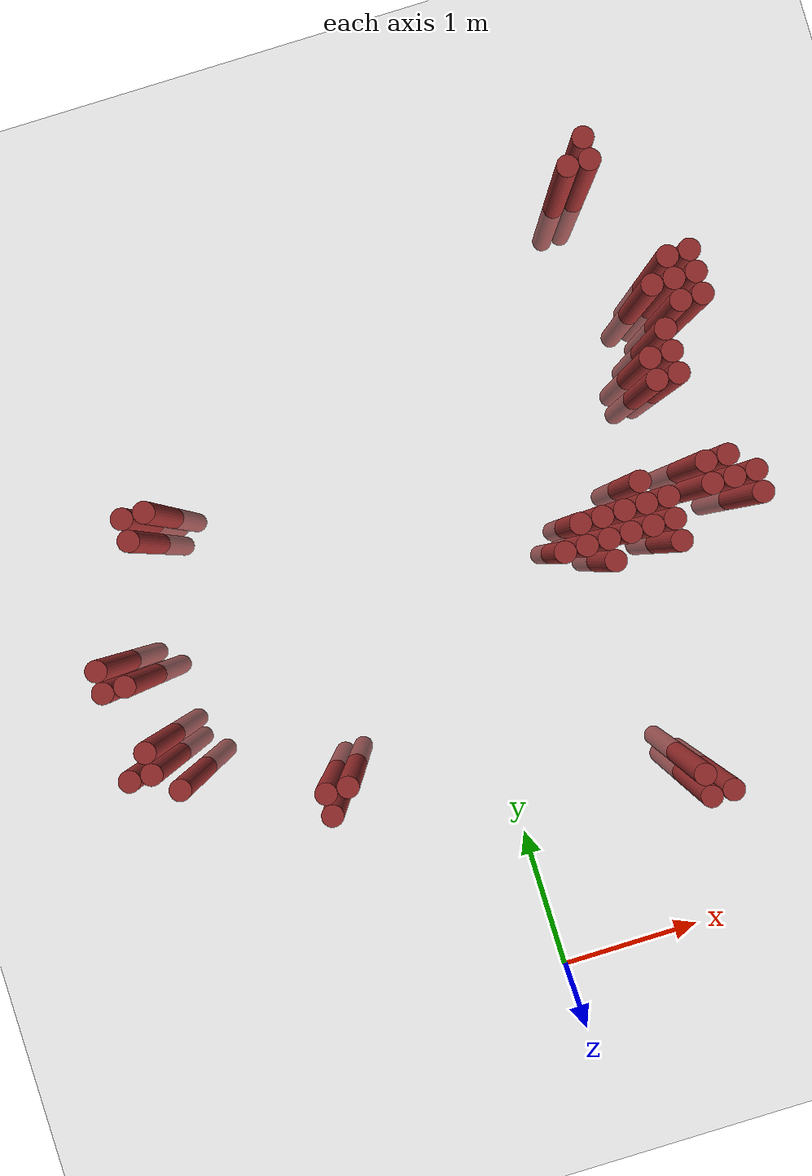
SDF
<sdf version="1.6">
 <world name="default">
  <model name="ground_plane">
   <static>1</static>
   <link name="link">
    <collision name="collision">
     <geometry><plane><normal>0 0 1</normal><size>100 100</size></plane></geometry>
     <surface><friction><ode><mu>100</mu><mu2>50</mu2></ode></friction></surface>
    </collision>
    <visual name="visual">
     <cast_shadows>0</cast_shadows>
     <geometry><plane><normal>0 0 1</normal><size>100 100</size></plane></geometry>
     <material>
      <script><uri>file://media/materials/scripts/gazebo.material</uri><name>Gazebo/Grey</name></script>
     </material>
    </visual>
   </link>
  </model>
  <model name="unit_cylinder_312">
   <static>1</static>
   <pose>-2.375000 2.275000 0.000000 0.000000 0.000000 0.000000</pose>
   <link name="link">
    <inertial>
     <mass>1</mass>
     <inertia><ixx>0.145833</ixx><ixy>0</ixy><ixz>0</ixz><iyy>0.145833</iyy><iyz>0</iyz><izz>0.125</izz></inertia>
    </inertial>
    <collision name="collision">
     <geometry><cylinder><radius>0.075000</radius><length>1.5</length></cylinder></geometry>
    </collision>
    <visual name="visual">
     <geometry><cylinder><radius>0.075000</radius><length>1.5</length></cylinder></geometry>
     <material>
      <ambient>0.648000 0.192000 0.192000 1</ambient>
      <diffuse>0.648000 0.192000 0.192000 1</diffuse>
     </material>
     <material>
      <script><name>Gazebo/Grey</name><uri>file://media/materials/scripts/gazebo.material</uri></script>
     </material>
    </visual>
   </link>
  </model>
  <model name="unit_cylinder_313">
   <static>1</static>
   <pose>-2.375000 2.875000 0.000000 0.000000 0.000000 0.000000</pose>
   <link name="link">
    <inertial>
     <mass>1</mass>
     <inertia><ixx>0.145833</ixx><ixy>0</ixy><ixz>0</ixz><iyy>0.145833</iyy><iyz>0</iyz><izz>0.125</izz></inertia>
    </inertial>
    <collision name="collision">
     <geometry><cylinder><radius>0.075000</radius><length>1.5</length></cylinder></geometry>
    </collision>
    <visual name="visual">
     <geometry><cylinder><radius>0.075000</radius><length>1.5</length></cylinder></geometry>
     <material>
      <ambient>0.648000 0.192000 0.192000 1</ambient>
      <diffuse>0.648000 0.192000 0.192000 1</diffuse>
     </material>
     <material>
      <script><name>Gazebo/Grey</name><uri>file://media/materials/scripts/gazebo.material</uri></script>
     </material>
    </visual>
   </link>
  </model>
  <model name="unit_cylinder_314">
   <static>1</static>
   <pose>-2.375000 3.025000 0.000000 0.000000 0.000000 0.000000</pose>
   <link name="link">
    <inertial>
     <mass>1</mass>
     <inertia><ixx>0.145833</ixx><ixy>0</ixy><ixz>0</ixz><iyy>0.145833</iyy><iyz>0</iyz><izz>0.125</izz></inertia>
    </inertial>
    <collision name="collision">
     <geometry><cylinder><radius>0.075000</radius><length>1.5</length></cylinder></geometry>
    </collision>
    <visual name="visual">
     <geometry><cylinder><radius>0.075000</radius><length>1.5</length></cylinder></geometry>
     <material>
      <ambient>0.648000 0.192000 0.192000 1</ambient>
      <diffuse>0.648000 0.192000 0.192000 1</diffuse>
     </material>
     <material>
      <script><name>Gazebo/Grey</name><uri>file://media/materials/scripts/gazebo.material</uri></script>
     </material>
    </visual>
   </link>
  </model>
  <model name="unit_cylinder_318">
   <static>1</static>
   <pose>-2.225000 2.275000 0.000000 0.000000 0.000000 0.000000</pose>
   <link name="link">
    <inertial>
     <mass>1</mass>
     <inertia><ixx>0.145833</ixx><ixy>0</ixy><ixz>0</ixz><iyy>0.145833</iyy><iyz>0</iyz><izz>0.125</izz></inertia>
    </inertial>
    <collision name="collision">
     <geometry><cylinder><radius>0.075000</radius><length>1.5</length></cylinder></geometry>
    </collision>
    <visual name="visual">
     <geometry><cylinder><radius>0.075000</radius><length>1.5</length></cylinder></geometry>
     <material>
      <ambient>0.648000 0.192000 0.192000 1</ambient>
      <diffuse>0.648000 0.192000 0.192000 1</diffuse>
     </material>
     <material>
      <script><name>Gazebo/Grey</name><uri>file://media/materials/scripts/gazebo.material</uri></script>
     </material>
    </visual>
   </link>
  </model>
  <model name="unit_cylinder_319">
   <static>1</static>
   <pose>-2.225000 2.425000 0.000000 0.000000 0.000000 0.000000</pose>
   <link name="link">
    <inertial>
     <mass>1</mass>
     <inertia><ixx>0.145833</ixx><ixy>0</ixy><ixz>0</ixz><iyy>0.145833</iyy><iyz>0</iyz><izz>0.125</izz></inertia>
    </inertial>
    <collision name="collision">
     <geometry><cylinder><radius>0.075000</radius><length>1.5</length></cylinder></geometry>
    </collision>
    <visual name="visual">
     <geometry><cylinder><radius>0.075000</radius><length>1.5</length></cylinder></geometry>
     <material>
      <ambient>0.648000 0.192000 0.192000 1</ambient>
      <diffuse>0.648000 0.192000 0.192000 1</diffuse>
     </material>
     <material>
      <script><name>Gazebo/Grey</name><uri>file://media/materials/scripts/gazebo.material</uri></script>
     </material>
    </visual>
   </link>
  </model>
  <model name="unit_cylinder_320">
   <static>1</static>
   <pose>-2.225000 2.875000 0.000000 0.000000 0.000000 0.000000</pose>
   <link name="link">
    <inertial>
     <mass>1</mass>
     <inertia><ixx>0.145833</ixx><ixy>0</ixy><ixz>0</ixz><iyy>0.145833</iyy><iyz>0</iyz><izz>0.125</izz></inertia>
    </inertial>
    <collision name="collision">
     <geometry><cylinder><radius>0.075000</radius><length>1.5</length></cylinder></geometry>
    </collision>
    <visual name="visual">
     <geometry><cylinder><radius>0.075000</radius><length>1.5</length></cylinder></geometry>
     <material>
      <ambient>0.648000 0.192000 0.192000 1</ambient>
      <diffuse>0.648000 0.192000 0.192000 1</diffuse>
     </material>
     <material>
      <script><name>Gazebo/Grey</name><uri>file://media/materials/scripts/gazebo.material</uri></script>
     </material>
    </visual>
   </link>
  </model>
  <model name="unit_cylinder_323">
   <static>1</static>
   <pose>-2.075000 2.125000 0.000000 0.000000 0.000000 0.000000</pose>
   <link name="link">
    <inertial>
     <mass>1</mass>
     <inertia><ixx>0.145833</ixx><ixy>0</ixy><ixz>0</ixz><iyy>0.145833</iyy><iyz>0</iyz><izz>0.125</izz></inertia>
    </inertial>
    <collision name="collision">
     <geometry><cylinder><radius>0.075000</radius><length>1.5</length></cylinder></geometry>
    </collision>
    <visual name="visual">
     <geometry><cylinder><radius>0.075000</radius><length>1.5</length></cylinder></geometry>
     <material>
      <ambient>0.648000 0.192000 0.192000 1</ambient>
      <diffuse>0.648000 0.192000 0.192000 1</diffuse>
     </material>
     <material>
      <script><name>Gazebo/Grey</name><uri>file://media/materials/scripts/gazebo.material</uri></script>
     </material>
    </visual>
   </link>
  </model>
  <model name="unit_cylinder_326">
   <static>1</static>
   <pose>-1.925000 3.775000 0.000000 0.000000 0.000000 0.000000</pose>
   <link name="link">
    <inertial>
     <mass>1</mass>
     <inertia><ixx>0.145833</ixx><ixy>0</ixy><ixz>0</ixz><iyy>0.145833</iyy><iyz>0</iyz><izz>0.125</izz></inertia>
    </inertial>
    <collision name="collision">
     <geometry><cylinder><radius>0.075000</radius><length>1.5</length></cylinder></geometry>
    </collision>
    <visual name="visual">
     <geometry><cylinder><radius>0.075000</radius><length>1.5</length></cylinder></geometry>
     <material>
      <ambient>0.648000 0.192000 0.192000 1</ambient>
      <diffuse>0.648000 0.192000 0.192000 1</diffuse>
     </material>
     <material>
      <script><name>Gazebo/Grey</name><uri>file://media/materials/scripts/gazebo.material</uri></script>
     </material>
    </visual>
   </link>
  </model>
  <model name="unit_cylinder_327">
   <static>1</static>
   <pose>-1.925000 3.925000 0.000000 0.000000 0.000000 0.000000</pose>
   <link name="link">
    <inertial>
     <mass>1</mass>
     <inertia><ixx>0.145833</ixx><ixy>0</ixy><ixz>0</ixz><iyy>0.145833</iyy><iyz>0</iyz><izz>0.125</izz></inertia>
    </inertial>
    <collision name="collision">
     <geometry><cylinder><radius>0.075000</radius><length>1.5</length></cylinder></geometry>
    </collision>
    <visual name="visual">
     <geometry><cylinder><radius>0.075000</radius><length>1.5</length></cylinder></geometry>
     <material>
      <ambient>0.648000 0.192000 0.192000 1</ambient>
      <diffuse>0.648000 0.192000 0.192000 1</diffuse>
     </material>
     <material>
      <script><name>Gazebo/Grey</name><uri>file://media/materials/scripts/gazebo.material</uri></script>
     </material>
    </visual>
   </link>
  </model>
  <model name="unit_cylinder_332">
   <static>1</static>
   <pose>-1.775000 3.925000 0.000000 0.000000 0.000000 0.000000</pose>
   <link name="link">
    <inertial>
     <mass>1</mass>
     <inertia><ixx>0.145833</ixx><ixy>0</ixy><ixz>0</ixz><iyy>0.145833</iyy><iyz>0</iyz><izz>0.125</izz></inertia>
    </inertial>
    <collision name="collision">
     <geometry><cylinder><radius>0.075000</radius><length>1.5</length></cylinder></geometry>
    </collision>
    <visual name="visual">
     <geometry><cylinder><radius>0.075000</radius><length>1.5</length></cylinder></geometry>
     <material>
      <ambient>0.648000 0.192000 0.192000 1</ambient>
      <diffuse>0.648000 0.192000 0.192000 1</diffuse>
     </material>
     <material>
      <script><name>Gazebo/Grey</name><uri>file://media/materials/scripts/gazebo.material</uri></script>
     </material>
    </visual>
   </link>
  </model>
  <model name="unit_cylinder_338">
   <static>1</static>
   <pose>-1.175000 1.675000 0.000000 0.000000 0.000000 0.000000</pose>
   <link name="link">
    <inertial>
     <mass>1</mass>
     <inertia><ixx>0.145833</ixx><ixy>0</ixy><ixz>0</ixz><iyy>0.145833</iyy><iyz>0</iyz><izz>0.125</izz></inertia>
    </inertial>
    <collision name="collision">
     <geometry><cylinder><radius>0.075000</radius><length>1.5</length></cylinder></geometry>
    </collision>
    <visual name="visual">
     <geometry><cylinder><radius>0.075000</radius><length>1.5</length></cylinder></geometry>
     <material>
      <ambient>0.648000 0.192000 0.192000 1</ambient>
      <diffuse>0.648000 0.192000 0.192000 1</diffuse>
     </material>
     <material>
      <script><name>Gazebo/Grey</name><uri>file://media/materials/scripts/gazebo.material</uri></script>
     </material>
    </visual>
   </link>
  </model>
  <model name="unit_cylinder_339">
   <static>1</static>
   <pose>-1.175000 1.825000 0.000000 0.000000 0.000000 0.000000</pose>
   <link name="link">
    <inertial>
     <mass>1</mass>
     <inertia><ixx>0.145833</ixx><ixy>0</ixy><ixz>0</ixz><iyy>0.145833</iyy><iyz>0</iyz><izz>0.125</izz></inertia>
    </inertial>
    <collision name="collision">
     <geometry><cylinder><radius>0.075000</radius><length>1.5</length></cylinder></geometry>
    </collision>
    <visual name="visual">
     <geometry><cylinder><radius>0.075000</radius><length>1.5</length></cylinder></geometry>
     <material>
      <ambient>0.648000 0.192000 0.192000 1</ambient>
      <diffuse>0.648000 0.192000 0.192000 1</diffuse>
     </material>
     <material>
      <script><name>Gazebo/Grey</name><uri>file://media/materials/scripts/gazebo.material</uri></script>
     </material>
    </visual>
   </link>
  </model>
  <model name="unit_cylinder_342">
   <static>1</static>
   <pose>-1.025000 1.825000 0.000000 0.000000 0.000000 0.000000</pose>
   <link name="link">
    <inertial>
     <mass>1</mass>
     <inertia><ixx>0.145833</ixx><ixy>0</ixy><ixz>0</ixz><iyy>0.145833</iyy><iyz>0</iyz><izz>0.125</izz></inertia>
    </inertial>
    <collision name="collision">
     <geometry><cylinder><radius>0.075000</radius><length>1.5</length></cylinder></geometry>
    </collision>
    <visual name="visual">
     <geometry><cylinder><radius>0.075000</radius><length>1.5</length></cylinder></geometry>
     <material>
      <ambient>0.648000 0.192000 0.192000 1</ambient>
      <diffuse>0.648000 0.192000 0.192000 1</diffuse>
     </material>
     <material>
      <script><name>Gazebo/Grey</name><uri>file://media/materials/scripts/gazebo.material</uri></script>
     </material>
    </visual>
   </link>
  </model>
  <model name="unit_cylinder_362">
   <static>1</static>
   <pose>0.775000 2.875000 0.000000 0.000000 0.000000 0.000000</pose>
   <link name="link">
    <inertial>
     <mass>1</mass>
     <inertia><ixx>0.145833</ixx><ixy>0</ixy><ixz>0</ixz><iyy>0.145833</iyy><iyz>0</iyz><izz>0.125</izz></inertia>
    </inertial>
    <collision name="collision">
     <geometry><cylinder><radius>0.075000</radius><length>1.5</length></cylinder></geometry>
    </collision>
    <visual name="visual">
     <geometry><cylinder><radius>0.075000</radius><length>1.5</length></cylinder></geometry>
     <material>
      <ambient>0.648000 0.192000 0.192000 1</ambient>
      <diffuse>0.648000 0.192000 0.192000 1</diffuse>
     </material>
     <material>
      <script><name>Gazebo/Grey</name><uri>file://media/materials/scripts/gazebo.material</uri></script>
     </material>
    </visual>
   </link>
  </model>
  <model name="unit_cylinder_363">
   <static>1</static>
   <pose>0.925000 2.875000 0.000000 0.000000 0.000000 0.000000</pose>
   <link name="link">
    <inertial>
     <mass>1</mass>
     <inertia><ixx>0.145833</ixx><ixy>0</ixy><ixz>0</ixz><iyy>0.145833</iyy><iyz>0</iyz><izz>0.125</izz></inertia>
    </inertial>
    <collision name="collision">
     <geometry><cylinder><radius>0.075000</radius><length>1.5</length></cylinder></geometry>
    </collision>
    <visual name="visual">
     <geometry><cylinder><radius>0.075000</radius><length>1.5</length></cylinder></geometry>
     <material>
      <ambient>0.648000 0.192000 0.192000 1</ambient>
      <diffuse>0.648000 0.192000 0.192000 1</diffuse>
     </material>
     <material>
      <script><name>Gazebo/Grey</name><uri>file://media/materials/scripts/gazebo.material</uri></script>
     </material>
    </visual>
   </link>
  </model>
  <model name="unit_cylinder_364">
   <static>1</static>
   <pose>0.925000 3.025000 0.000000 0.000000 0.000000 0.000000</pose>
   <link name="link">
    <inertial>
     <mass>1</mass>
     <inertia><ixx>0.145833</ixx><ixy>0</ixy><ixz>0</ixz><iyy>0.145833</iyy><iyz>0</iyz><izz>0.125</izz></inertia>
    </inertial>
    <collision name="collision">
     <geometry><cylinder><radius>0.075000</radius><length>1.5</length></cylinder></geometry>
    </collision>
    <visual name="visual">
     <geometry><cylinder><radius>0.075000</radius><length>1.5</length></cylinder></geometry>
     <material>
      <ambient>0.648000 0.192000 0.192000 1</ambient>
      <diffuse>0.648000 0.192000 0.192000 1</diffuse>
     </material>
     <material>
      <script><name>Gazebo/Grey</name><uri>file://media/materials/scripts/gazebo.material</uri></script>
     </material>
    </visual>
   </link>
  </model>
  <model name="unit_cylinder_365">
   <static>1</static>
   <pose>1.075000 2.725000 0.000000 0.000000 0.000000 0.000000</pose>
   <link name="link">
    <inertial>
     <mass>1</mass>
     <inertia><ixx>0.145833</ixx><ixy>0</ixy><ixz>0</ixz><iyy>0.145833</iyy><iyz>0</iyz><izz>0.125</izz></inertia>
    </inertial>
    <collision name="collision">
     <geometry><cylinder><radius>0.075000</radius><length>1.5</length></cylinder></geometry>
    </collision>
    <visual name="visual">
     <geometry><cylinder><radius>0.075000</radius><length>1.5</length></cylinder></geometry>
     <material>
      <ambient>0.648000 0.192000 0.192000 1</ambient>
      <diffuse>0.648000 0.192000 0.192000 1</diffuse>
     </material>
     <material>
      <script><name>Gazebo/Grey</name><uri>file://media/materials/scripts/gazebo.material</uri></script>
     </material>
    </visual>
   </link>
  </model>
  <model name="unit_cylinder_366">
   <static>1</static>
   <pose>1.075000 2.875000 0.000000 0.000000 0.000000 0.000000</pose>
   <link name="link">
    <inertial>
     <mass>1</mass>
     <inertia><ixx>0.145833</ixx><ixy>0</ixy><ixz>0</ixz><iyy>0.145833</iyy><iyz>0</iyz><izz>0.125</izz></inertia>
    </inertial>
    <collision name="collision">
     <geometry><cylinder><radius>0.075000</radius><length>1.5</length></cylinder></geometry>
    </collision>
    <visual name="visual">
     <geometry><cylinder><radius>0.075000</radius><length>1.5</length></cylinder></geometry>
     <material>
      <ambient>0.648000 0.192000 0.192000 1</ambient>
      <diffuse>0.648000 0.192000 0.192000 1</diffuse>
     </material>
     <material>
      <script><name>Gazebo/Grey</name><uri>file://media/materials/scripts/gazebo.material</uri></script>
     </material>
    </visual>
   </link>
  </model>
  <model name="unit_cylinder_367">
   <static>1</static>
   <pose>1.075000 3.025000 0.000000 0.000000 0.000000 0.000000</pose>
   <link name="link">
    <inertial>
     <mass>1</mass>
     <inertia><ixx>0.145833</ixx><ixy>0</ixy><ixz>0</ixz><iyy>0.145833</iyy><iyz>0</iyz><izz>0.125</izz></inertia>
    </inertial>
    <collision name="collision">
     <geometry><cylinder><radius>0.075000</radius><length>1.5</length></cylinder></geometry>
    </collision>
    <visual name="visual">
     <geometry><cylinder><radius>0.075000</radius><length>1.5</length></cylinder></geometry>
     <material>
      <ambient>0.648000 0.192000 0.192000 1</ambient>
      <diffuse>0.648000 0.192000 0.192000 1</diffuse>
     </material>
     <material>
      <script><name>Gazebo/Grey</name><uri>file://media/materials/scripts/gazebo.material</uri></script>
     </material>
    </visual>
   </link>
  </model>
  <model name="unit_cylinder_369">
   <static>1</static>
   <pose>1.225000 1.075000 0.000000 0.000000 0.000000 0.000000</pose>
   <link name="link">
    <inertial>
     <mass>1</mass>
     <inertia><ixx>0.145833</ixx><ixy>0</ixy><ixz>0</ixz><iyy>0.145833</iyy><iyz>0</iyz><izz>0.125</izz></inertia>
    </inertial>
    <collision name="collision">
     <geometry><cylinder><radius>0.075000</radius><length>1.5</length></cylinder></geometry>
    </collision>
    <visual name="visual">
     <geometry><cylinder><radius>0.075000</radius><length>1.5</length></cylinder></geometry>
     <material>
      <ambient>0.648000 0.192000 0.192000 1</ambient>
      <diffuse>0.648000 0.192000 0.192000 1</diffuse>
     </material>
     <material>
      <script><name>Gazebo/Grey</name><uri>file://media/materials/scripts/gazebo.material</uri></script>
     </material>
    </visual>
   </link>
  </model>
  <model name="unit_cylinder_370">
   <static>1</static>
   <pose>1.225000 1.225000 0.000000 0.000000 0.000000 0.000000</pose>
   <link name="link">
    <inertial>
     <mass>1</mass>
     <inertia><ixx>0.145833</ixx><ixy>0</ixy><ixz>0</ixz><iyy>0.145833</iyy><iyz>0</iyz><izz>0.125</izz></inertia>
    </inertial>
    <collision name="collision">
     <geometry><cylinder><radius>0.075000</radius><length>1.5</length></cylinder></geometry>
    </collision>
    <visual name="visual">
     <geometry><cylinder><radius>0.075000</radius><length>1.5</length></cylinder></geometry>
     <material>
      <ambient>0.648000 0.192000 0.192000 1</ambient>
      <diffuse>0.648000 0.192000 0.192000 1</diffuse>
     </material>
     <material>
      <script><name>Gazebo/Grey</name><uri>file://media/materials/scripts/gazebo.material</uri></script>
     </material>
    </visual>
   </link>
  </model>
  <model name="unit_cylinder_371">
   <static>1</static>
   <pose>1.225000 2.875000 0.000000 0.000000 0.000000 0.000000</pose>
   <link name="link">
    <inertial>
     <mass>1</mass>
     <inertia><ixx>0.145833</ixx><ixy>0</ixy><ixz>0</ixz><iyy>0.145833</iyy><iyz>0</iyz><izz>0.125</izz></inertia>
    </inertial>
    <collision name="collision">
     <geometry><cylinder><radius>0.075000</radius><length>1.5</length></cylinder></geometry>
    </collision>
    <visual name="visual">
     <geometry><cylinder><radius>0.075000</radius><length>1.5</length></cylinder></geometry>
     <material>
      <ambient>0.648000 0.192000 0.192000 1</ambient>
      <diffuse>0.648000 0.192000 0.192000 1</diffuse>
     </material>
     <material>
      <script><name>Gazebo/Grey</name><uri>file://media/materials/scripts/gazebo.material</uri></script>
     </material>
    </visual>
   </link>
  </model>
  <model name="unit_cylinder_372">
   <static>1</static>
   <pose>1.225000 3.025000 0.000000 0.000000 0.000000 0.000000</pose>
   <link name="link">
    <inertial>
     <mass>1</mass>
     <inertia><ixx>0.145833</ixx><ixy>0</ixy><ixz>0</ixz><iyy>0.145833</iyy><iyz>0</iyz><izz>0.125</izz></inertia>
    </inertial>
    <collision name="collision">
     <geometry><cylinder><radius>0.075000</radius><length>1.5</length></cylinder></geometry>
    </collision>
    <visual name="visual">
     <geometry><cylinder><radius>0.075000</radius><length>1.5</length></cylinder></geometry>
     <material>
      <ambient>0.648000 0.192000 0.192000 1</ambient>
      <diffuse>0.648000 0.192000 0.192000 1</diffuse>
     </material>
     <material>
      <script><name>Gazebo/Grey</name><uri>file://media/materials/scripts/gazebo.material</uri></script>
     </material>
    </visual>
   </link>
  </model>
  <model name="unit_cylinder_375">
   <static>1</static>
   <pose>1.375000 1.075000 0.000000 0.000000 0.000000 0.000000</pose>
   <link name="link">
    <inertial>
     <mass>1</mass>
     <inertia><ixx>0.145833</ixx><ixy>0</ixy><ixz>0</ixz><iyy>0.145833</iyy><iyz>0</iyz><izz>0.125</izz></inertia>
    </inertial>
    <collision name="collision">
     <geometry><cylinder><radius>0.075000</radius><length>1.5</length></cylinder></geometry>
    </collision>
    <visual name="visual">
     <geometry><cylinder><radius>0.075000</radius><length>1.5</length></cylinder></geometry>
     <material>
      <ambient>0.648000 0.192000 0.192000 1</ambient>
      <diffuse>0.648000 0.192000 0.192000 1</diffuse>
     </material>
     <material>
      <script><name>Gazebo/Grey</name><uri>file://media/materials/scripts/gazebo.material</uri></script>
     </material>
    </visual>
   </link>
  </model>
  <model name="unit_cylinder_376">
   <static>1</static>
   <pose>1.375000 2.875000 0.000000 0.000000 0.000000 0.000000</pose>
   <link name="link">
    <inertial>
     <mass>1</mass>
     <inertia><ixx>0.145833</ixx><ixy>0</ixy><ixz>0</ixz><iyy>0.145833</iyy><iyz>0</iyz><izz>0.125</izz></inertia>
    </inertial>
    <collision name="collision">
     <geometry><cylinder><radius>0.075000</radius><length>1.5</length></cylinder></geometry>
    </collision>
    <visual name="visual">
     <geometry><cylinder><radius>0.075000</radius><length>1.5</length></cylinder></geometry>
     <material>
      <ambient>0.648000 0.192000 0.192000 1</ambient>
      <diffuse>0.648000 0.192000 0.192000 1</diffuse>
     </material>
     <material>
      <script><name>Gazebo/Grey</name><uri>file://media/materials/scripts/gazebo.material</uri></script>
     </material>
    </visual>
   </link>
  </model>
  <model name="unit_cylinder_377">
   <static>1</static>
   <pose>1.375000 3.025000 0.000000 0.000000 0.000000 0.000000</pose>
   <link name="link">
    <inertial>
     <mass>1</mass>
     <inertia><ixx>0.145833</ixx><ixy>0</ixy><ixz>0</ixz><iyy>0.145833</iyy><iyz>0</iyz><izz>0.125</izz></inertia>
    </inertial>
    <collision name="collision">
     <geometry><cylinder><radius>0.075000</radius><length>1.5</length></cylinder></geometry>
    </collision>
    <visual name="visual">
     <geometry><cylinder><radius>0.075000</radius><length>1.5</length></cylinder></geometry>
     <material>
      <ambient>0.648000 0.192000 0.192000 1</ambient>
      <diffuse>0.648000 0.192000 0.192000 1</diffuse>
     </material>
     <material>
      <script><name>Gazebo/Grey</name><uri>file://media/materials/scripts/gazebo.material</uri></script>
     </material>
    </visual>
   </link>
  </model>
  <model name="unit_cylinder_378">
   <static>1</static>
   <pose>1.375000 3.175000 0.000000 0.000000 0.000000 0.000000</pose>
   <link name="link">
    <inertial>
     <mass>1</mass>
     <inertia><ixx>0.145833</ixx><ixy>0</ixy><ixz>0</ixz><iyy>0.145833</iyy><iyz>0</iyz><izz>0.125</izz></inertia>
    </inertial>
    <collision name="collision">
     <geometry><cylinder><radius>0.075000</radius><length>1.5</length></cylinder></geometry>
    </collision>
    <visual name="visual">
     <geometry><cylinder><radius>0.075000</radius><length>1.5</length></cylinder></geometry>
     <material>
      <ambient>0.648000 0.192000 0.192000 1</ambient>
      <diffuse>0.648000 0.192000 0.192000 1</diffuse>
     </material>
     <material>
      <script><name>Gazebo/Grey</name><uri>file://media/materials/scripts/gazebo.material</uri></script>
     </material>
    </visual>
   </link>
  </model>
  <model name="unit_cylinder_379">
   <static>1</static>
   <pose>1.525000 2.725000 0.000000 0.000000 0.000000 0.000000</pose>
   <link name="link">
    <inertial>
     <mass>1</mass>
     <inertia><ixx>0.145833</ixx><ixy>0</ixy><ixz>0</ixz><iyy>0.145833</iyy><iyz>0</iyz><izz>0.125</izz></inertia>
    </inertial>
    <collision name="collision">
     <geometry><cylinder><radius>0.075000</radius><length>1.5</length></cylinder></geometry>
    </collision>
    <visual name="visual">
     <geometry><cylinder><radius>0.075000</radius><length>1.5</length></cylinder></geometry>
     <material>
      <ambient>0.648000 0.192000 0.192000 1</ambient>
      <diffuse>0.648000 0.192000 0.192000 1</diffuse>
     </material>
     <material>
      <script><name>Gazebo/Grey</name><uri>file://media/materials/scripts/gazebo.material</uri></script>
     </material>
    </visual>
   </link>
  </model>
  <model name="unit_cylinder_380">
   <static>1</static>
   <pose>1.525000 2.875000 0.000000 0.000000 0.000000 0.000000</pose>
   <link name="link">
    <inertial>
     <mass>1</mass>
     <inertia><ixx>0.145833</ixx><ixy>0</ixy><ixz>0</ixz><iyy>0.145833</iyy><iyz>0</iyz><izz>0.125</izz></inertia>
    </inertial>
    <collision name="collision">
     <geometry><cylinder><radius>0.075000</radius><length>1.5</length></cylinder></geometry>
    </collision>
    <visual name="visual">
     <geometry><cylinder><radius>0.075000</radius><length>1.5</length></cylinder></geometry>
     <material>
      <ambient>0.648000 0.192000 0.192000 1</ambient>
      <diffuse>0.648000 0.192000 0.192000 1</diffuse>
     </material>
     <material>
      <script><name>Gazebo/Grey</name><uri>file://media/materials/scripts/gazebo.material</uri></script>
     </material>
    </visual>
   </link>
  </model>
  <model name="unit_cylinder_381">
   <static>1</static>
   <pose>1.525000 3.025000 0.000000 0.000000 0.000000 0.000000</pose>
   <link name="link">
    <inertial>
     <mass>1</mass>
     <inertia><ixx>0.145833</ixx><ixy>0</ixy><ixz>0</ixz><iyy>0.145833</iyy><iyz>0</iyz><izz>0.125</izz></inertia>
    </inertial>
    <collision name="collision">
     <geometry><cylinder><radius>0.075000</radius><length>1.5</length></cylinder></geometry>
    </collision>
    <visual name="visual">
     <geometry><cylinder><radius>0.075000</radius><length>1.5</length></cylinder></geometry>
     <material>
      <ambient>0.648000 0.192000 0.192000 1</ambient>
      <diffuse>0.648000 0.192000 0.192000 1</diffuse>
     </material>
     <material>
      <script><name>Gazebo/Grey</name><uri>file://media/materials/scripts/gazebo.material</uri></script>
     </material>
    </visual>
   </link>
  </model>
  <model name="unit_cylinder_382">
   <static>1</static>
   <pose>1.525000 5.275000 0.000000 0.000000 0.000000 0.000000</pose>
   <link name="link">
    <inertial>
     <mass>1</mass>
     <inertia><ixx>0.145833</ixx><ixy>0</ixy><ixz>0</ixz><iyy>0.145833</iyy><iyz>0</iyz><izz>0.125</izz></inertia>
    </inertial>
    <collision name="collision">
     <geometry><cylinder><radius>0.075000</radius><length>1.5</length></cylinder></geometry>
    </collision>
    <visual name="visual">
     <geometry><cylinder><radius>0.075000</radius><length>1.5</length></cylinder></geometry>
     <material>
      <ambient>0.648000 0.192000 0.192000 1</ambient>
      <diffuse>0.648000 0.192000 0.192000 1</diffuse>
     </material>
     <material>
      <script><name>Gazebo/Grey</name><uri>file://media/materials/scripts/gazebo.material</uri></script>
     </material>
    </visual>
   </link>
  </model>
  <model name="unit_cylinder_383">
   <static>1</static>
   <pose>1.675000 3.775000 0.000000 0.000000 0.000000 0.000000</pose>
   <link name="link">
    <inertial>
     <mass>1</mass>
     <inertia><ixx>0.145833</ixx><ixy>0</ixy><ixz>0</ixz><iyy>0.145833</iyy><iyz>0</iyz><izz>0.125</izz></inertia>
    </inertial>
    <collision name="collision">
     <geometry><cylinder><radius>0.075000</radius><length>1.5</length></cylinder></geometry>
    </collision>
    <visual name="visual">
     <geometry><cylinder><radius>0.075000</radius><length>1.5</length></cylinder></geometry>
     <material>
      <ambient>0.648000 0.192000 0.192000 1</ambient>
      <diffuse>0.648000 0.192000 0.192000 1</diffuse>
     </material>
     <material>
      <script><name>Gazebo/Grey</name><uri>file://media/materials/scripts/gazebo.material</uri></script>
     </material>
    </visual>
   </link>
  </model>
  <model name="unit_cylinder_384">
   <static>1</static>
   <pose>1.675000 3.925000 0.000000 0.000000 0.000000 0.000000</pose>
   <link name="link">
    <inertial>
     <mass>1</mass>
     <inertia><ixx>0.145833</ixx><ixy>0</ixy><ixz>0</ixz><iyy>0.145833</iyy><iyz>0</iyz><izz>0.125</izz></inertia>
    </inertial>
    <collision name="collision">
     <geometry><cylinder><radius>0.075000</radius><length>1.5</length></cylinder></geometry>
    </collision>
    <visual name="visual">
     <geometry><cylinder><radius>0.075000</radius><length>1.5</length></cylinder></geometry>
     <material>
      <ambient>0.648000 0.192000 0.192000 1</ambient>
      <diffuse>0.648000 0.192000 0.192000 1</diffuse>
     </material>
     <material>
      <script><name>Gazebo/Grey</name><uri>file://media/materials/scripts/gazebo.material</uri></script>
     </material>
    </visual>
   </link>
  </model>
  <model name="unit_cylinder_385">
   <static>1</static>
   <pose>1.675000 5.275000 0.000000 0.000000 0.000000 0.000000</pose>
   <link name="link">
    <inertial>
     <mass>1</mass>
     <inertia><ixx>0.145833</ixx><ixy>0</ixy><ixz>0</ixz><iyy>0.145833</iyy><iyz>0</iyz><izz>0.125</izz></inertia>
    </inertial>
    <collision name="collision">
     <geometry><cylinder><radius>0.075000</radius><length>1.5</length></cylinder></geometry>
    </collision>
    <visual name="visual">
     <geometry><cylinder><radius>0.075000</radius><length>1.5</length></cylinder></geometry>
     <material>
      <ambient>0.648000 0.192000 0.192000 1</ambient>
      <diffuse>0.648000 0.192000 0.192000 1</diffuse>
     </material>
     <material>
      <script><name>Gazebo/Grey</name><uri>file://media/materials/scripts/gazebo.material</uri></script>
     </material>
    </visual>
   </link>
  </model>
  <model name="unit_cylinder_386">
   <static>1</static>
   <pose>1.675000 5.425000 0.000000 0.000000 0.000000 0.000000</pose>
   <link name="link">
    <inertial>
     <mass>1</mass>
     <inertia><ixx>0.145833</ixx><ixy>0</ixy><ixz>0</ixz><iyy>0.145833</iyy><iyz>0</iyz><izz>0.125</izz></inertia>
    </inertial>
    <collision name="collision">
     <geometry><cylinder><radius>0.075000</radius><length>1.5</length></cylinder></geometry>
    </collision>
    <visual name="visual">
     <geometry><cylinder><radius>0.075000</radius><length>1.5</length></cylinder></geometry>
     <material>
      <ambient>0.648000 0.192000 0.192000 1</ambient>
      <diffuse>0.648000 0.192000 0.192000 1</diffuse>
     </material>
     <material>
      <script><name>Gazebo/Grey</name><uri>file://media/materials/scripts/gazebo.material</uri></script>
     </material>
    </visual>
   </link>
  </model>
  <model name="unit_cylinder_387">
   <static>1</static>
   <pose>1.825000 3.025000 0.000000 0.000000 0.000000 0.000000</pose>
   <link name="link">
    <inertial>
     <mass>1</mass>
     <inertia><ixx>0.145833</ixx><ixy>0</ixy><ixz>0</ixz><iyy>0.145833</iyy><iyz>0</iyz><izz>0.125</izz></inertia>
    </inertial>
    <collision name="collision">
     <geometry><cylinder><radius>0.075000</radius><length>1.5</length></cylinder></geometry>
    </collision>
    <visual name="visual">
     <geometry><cylinder><radius>0.075000</radius><length>1.5</length></cylinder></geometry>
     <material>
      <ambient>0.648000 0.192000 0.192000 1</ambient>
      <diffuse>0.648000 0.192000 0.192000 1</diffuse>
     </material>
     <material>
      <script><name>Gazebo/Grey</name><uri>file://media/materials/scripts/gazebo.material</uri></script>
     </material>
    </visual>
   </link>
  </model>
  <model name="unit_cylinder_388">
   <static>1</static>
   <pose>1.825000 3.175000 0.000000 0.000000 0.000000 0.000000</pose>
   <link name="link">
    <inertial>
     <mass>1</mass>
     <inertia><ixx>0.145833</ixx><ixy>0</ixy><ixz>0</ixz><iyy>0.145833</iyy><iyz>0</iyz><izz>0.125</izz></inertia>
    </inertial>
    <collision name="collision">
     <geometry><cylinder><radius>0.075000</radius><length>1.5</length></cylinder></geometry>
    </collision>
    <visual name="visual">
     <geometry><cylinder><radius>0.075000</radius><length>1.5</length></cylinder></geometry>
     <material>
      <ambient>0.648000 0.192000 0.192000 1</ambient>
      <diffuse>0.648000 0.192000 0.192000 1</diffuse>
     </material>
     <material>
      <script><name>Gazebo/Grey</name><uri>file://media/materials/scripts/gazebo.material</uri></script>
     </material>
    </visual>
   </link>
  </model>
  <model name="unit_cylinder_389">
   <static>1</static>
   <pose>1.825000 3.775000 0.000000 0.000000 0.000000 0.000000</pose>
   <link name="link">
    <inertial>
     <mass>1</mass>
     <inertia><ixx>0.145833</ixx><ixy>0</ixy><ixz>0</ixz><iyy>0.145833</iyy><iyz>0</iyz><izz>0.125</izz></inertia>
    </inertial>
    <collision name="collision">
     <geometry><cylinder><radius>0.075000</radius><length>1.5</length></cylinder></geometry>
    </collision>
    <visual name="visual">
     <geometry><cylinder><radius>0.075000</radius><length>1.5</length></cylinder></geometry>
     <material>
      <ambient>0.648000 0.192000 0.192000 1</ambient>
      <diffuse>0.648000 0.192000 0.192000 1</diffuse>
     </material>
     <material>
      <script><name>Gazebo/Grey</name><uri>file://media/materials/scripts/gazebo.material</uri></script>
     </material>
    </visual>
   </link>
  </model>
  <model name="unit_cylinder_390">
   <static>1</static>
   <pose>1.825000 3.925000 0.000000 0.000000 0.000000 0.000000</pose>
   <link name="link">
    <inertial>
     <mass>1</mass>
     <inertia><ixx>0.145833</ixx><ixy>0</ixy><ixz>0</ixz><iyy>0.145833</iyy><iyz>0</iyz><izz>0.125</izz></inertia>
    </inertial>
    <collision name="collision">
     <geometry><cylinder><radius>0.075000</radius><length>1.5</length></cylinder></geometry>
    </collision>
    <visual name="visual">
     <geometry><cylinder><radius>0.075000</radius><length>1.5</length></cylinder></geometry>
     <material>
      <ambient>0.648000 0.192000 0.192000 1</ambient>
      <diffuse>0.648000 0.192000 0.192000 1</diffuse>
     </material>
     <material>
      <script><name>Gazebo/Grey</name><uri>file://media/materials/scripts/gazebo.material</uri></script>
     </material>
    </visual>
   </link>
  </model>
  <model name="unit_cylinder_391">
   <static>1</static>
   <pose>1.825000 4.075000 0.000000 0.000000 0.000000 0.000000</pose>
   <link name="link">
    <inertial>
     <mass>1</mass>
     <inertia><ixx>0.145833</ixx><ixy>0</ixy><ixz>0</ixz><iyy>0.145833</iyy><iyz>0</iyz><izz>0.125</izz></inertia>
    </inertial>
    <collision name="collision">
     <geometry><cylinder><radius>0.075000</radius><length>1.5</length></cylinder></geometry>
    </collision>
    <visual name="visual">
     <geometry><cylinder><radius>0.075000</radius><length>1.5</length></cylinder></geometry>
     <material>
      <ambient>0.648000 0.192000 0.192000 1</ambient>
      <diffuse>0.648000 0.192000 0.192000 1</diffuse>
     </material>
     <material>
      <script><name>Gazebo/Grey</name><uri>file://media/materials/scripts/gazebo.material</uri></script>
     </material>
    </visual>
   </link>
  </model>
  <model name="unit_cylinder_392">
   <static>1</static>
   <pose>1.825000 4.375000 0.000000 0.000000 0.000000 0.000000</pose>
   <link name="link">
    <inertial>
     <mass>1</mass>
     <inertia><ixx>0.145833</ixx><ixy>0</ixy><ixz>0</ixz><iyy>0.145833</iyy><iyz>0</iyz><izz>0.125</izz></inertia>
    </inertial>
    <collision name="collision">
     <geometry><cylinder><radius>0.075000</radius><length>1.5</length></cylinder></geometry>
    </collision>
    <visual name="visual">
     <geometry><cylinder><radius>0.075000</radius><length>1.5</length></cylinder></geometry>
     <material>
      <ambient>0.648000 0.192000 0.192000 1</ambient>
      <diffuse>0.648000 0.192000 0.192000 1</diffuse>
     </material>
     <material>
      <script><name>Gazebo/Grey</name><uri>file://media/materials/scripts/gazebo.material</uri></script>
     </material>
    </visual>
   </link>
  </model>
  <model name="unit_cylinder_393">
   <static>1</static>
   <pose>1.975000 3.025000 0.000000 0.000000 0.000000 0.000000</pose>
   <link name="link">
    <inertial>
     <mass>1</mass>
     <inertia><ixx>0.145833</ixx><ixy>0</ixy><ixz>0</ixz><iyy>0.145833</iyy><iyz>0</iyz><izz>0.125</izz></inertia>
    </inertial>
    <collision name="collision">
     <geometry><cylinder><radius>0.075000</radius><length>1.5</length></cylinder></geometry>
    </collision>
    <visual name="visual">
     <geometry><cylinder><radius>0.075000</radius><length>1.5</length></cylinder></geometry>
     <material>
      <ambient>0.648000 0.192000 0.192000 1</ambient>
      <diffuse>0.648000 0.192000 0.192000 1</diffuse>
     </material>
     <material>
      <script><name>Gazebo/Grey</name><uri>file://media/materials/scripts/gazebo.material</uri></script>
     </material>
    </visual>
   </link>
  </model>
  <model name="unit_cylinder_394">
   <static>1</static>
   <pose>1.975000 3.175000 0.000000 0.000000 0.000000 0.000000</pose>
   <link name="link">
    <inertial>
     <mass>1</mass>
     <inertia><ixx>0.145833</ixx><ixy>0</ixy><ixz>0</ixz><iyy>0.145833</iyy><iyz>0</iyz><izz>0.125</izz></inertia>
    </inertial>
    <collision name="collision">
     <geometry><cylinder><radius>0.075000</radius><length>1.5</length></cylinder></geometry>
    </collision>
    <visual name="visual">
     <geometry><cylinder><radius>0.075000</radius><length>1.5</length></cylinder></geometry>
     <material>
      <ambient>0.648000 0.192000 0.192000 1</ambient>
      <diffuse>0.648000 0.192000 0.192000 1</diffuse>
     </material>
     <material>
      <script><name>Gazebo/Grey</name><uri>file://media/materials/scripts/gazebo.material</uri></script>
     </material>
    </visual>
   </link>
  </model>
  <model name="unit_cylinder_395">
   <static>1</static>
   <pose>1.975000 4.225000 0.000000 0.000000 0.000000 0.000000</pose>
   <link name="link">
    <inertial>
     <mass>1</mass>
     <inertia><ixx>0.145833</ixx><ixy>0</ixy><ixz>0</ixz><iyy>0.145833</iyy><iyz>0</iyz><izz>0.125</izz></inertia>
    </inertial>
    <collision name="collision">
     <geometry><cylinder><radius>0.075000</radius><length>1.5</length></cylinder></geometry>
    </collision>
    <visual name="visual">
     <geometry><cylinder><radius>0.075000</radius><length>1.5</length></cylinder></geometry>
     <material>
      <ambient>0.648000 0.192000 0.192000 1</ambient>
      <diffuse>0.648000 0.192000 0.192000 1</diffuse>
     </material>
     <material>
      <script><name>Gazebo/Grey</name><uri>file://media/materials/scripts/gazebo.material</uri></script>
     </material>
    </visual>
   </link>
  </model>
  <model name="unit_cylinder_396">
   <static>1</static>
   <pose>1.975000 4.375000 0.000000 0.000000 0.000000 0.000000</pose>
   <link name="link">
    <inertial>
     <mass>1</mass>
     <inertia><ixx>0.145833</ixx><ixy>0</ixy><ixz>0</ixz><iyy>0.145833</iyy><iyz>0</iyz><izz>0.125</izz></inertia>
    </inertial>
    <collision name="collision">
     <geometry><cylinder><radius>0.075000</radius><length>1.5</length></cylinder></geometry>
    </collision>
    <visual name="visual">
     <geometry><cylinder><radius>0.075000</radius><length>1.5</length></cylinder></geometry>
     <material>
      <ambient>0.648000 0.192000 0.192000 1</ambient>
      <diffuse>0.648000 0.192000 0.192000 1</diffuse>
     </material>
     <material>
      <script><name>Gazebo/Grey</name><uri>file://media/materials/scripts/gazebo.material</uri></script>
     </material>
    </visual>
   </link>
  </model>
  <model name="unit_cylinder_397">
   <static>1</static>
   <pose>1.975000 4.525000 0.000000 0.000000 0.000000 0.000000</pose>
   <link name="link">
    <inertial>
     <mass>1</mass>
     <inertia><ixx>0.145833</ixx><ixy>0</ixy><ixz>0</ixz><iyy>0.145833</iyy><iyz>0</iyz><izz>0.125</izz></inertia>
    </inertial>
    <collision name="collision">
     <geometry><cylinder><radius>0.075000</radius><length>1.5</length></cylinder></geometry>
    </collision>
    <visual name="visual">
     <geometry><cylinder><radius>0.075000</radius><length>1.5</length></cylinder></geometry>
     <material>
      <ambient>0.648000 0.192000 0.192000 1</ambient>
      <diffuse>0.648000 0.192000 0.192000 1</diffuse>
     </material>
     <material>
      <script><name>Gazebo/Grey</name><uri>file://media/materials/scripts/gazebo.material</uri></script>
     </material>
    </visual>
   </link>
  </model>
  <model name="unit_cylinder_400">
   <static>1</static>
   <pose>2.125000 2.875000 0.000000 0.000000 0.000000 0.000000</pose>
   <link name="link">
    <inertial>
     <mass>1</mass>
     <inertia><ixx>0.145833</ixx><ixy>0</ixy><ixz>0</ixz><iyy>0.145833</iyy><iyz>0</iyz><izz>0.125</izz></inertia>
    </inertial>
    <collision name="collision">
     <geometry><cylinder><radius>0.075000</radius><length>1.5</length></cylinder></geometry>
    </collision>
    <visual name="visual">
     <geometry><cylinder><radius>0.075000</radius><length>1.5</length></cylinder></geometry>
     <material>
      <ambient>0.648000 0.192000 0.192000 1</ambient>
      <diffuse>0.648000 0.192000 0.192000 1</diffuse>
     </material>
     <material>
      <script><name>Gazebo/Grey</name><uri>file://media/materials/scripts/gazebo.material</uri></script>
     </material>
    </visual>
   </link>
  </model>
  <model name="unit_cylinder_401">
   <static>1</static>
   <pose>2.125000 3.025000 0.000000 0.000000 0.000000 0.000000</pose>
   <link name="link">
    <inertial>
     <mass>1</mass>
     <inertia><ixx>0.145833</ixx><ixy>0</ixy><ixz>0</ixz><iyy>0.145833</iyy><iyz>0</iyz><izz>0.125</izz></inertia>
    </inertial>
    <collision name="collision">
     <geometry><cylinder><radius>0.075000</radius><length>1.5</length></cylinder></geometry>
    </collision>
    <visual name="visual">
     <geometry><cylinder><radius>0.075000</radius><length>1.5</length></cylinder></geometry>
     <material>
      <ambient>0.648000 0.192000 0.192000 1</ambient>
      <diffuse>0.648000 0.192000 0.192000 1</diffuse>
     </material>
     <material>
      <script><name>Gazebo/Grey</name><uri>file://media/materials/scripts/gazebo.material</uri></script>
     </material>
    </visual>
   </link>
  </model>
  <model name="unit_cylinder_402">
   <static>1</static>
   <pose>2.125000 4.225000 0.000000 0.000000 0.000000 0.000000</pose>
   <link name="link">
    <inertial>
     <mass>1</mass>
     <inertia><ixx>0.145833</ixx><ixy>0</ixy><ixz>0</ixz><iyy>0.145833</iyy><iyz>0</iyz><izz>0.125</izz></inertia>
    </inertial>
    <collision name="collision">
     <geometry><cylinder><radius>0.075000</radius><length>1.5</length></cylinder></geometry>
    </collision>
    <visual name="visual">
     <geometry><cylinder><radius>0.075000</radius><length>1.5</length></cylinder></geometry>
     <material>
      <ambient>0.648000 0.192000 0.192000 1</ambient>
      <diffuse>0.648000 0.192000 0.192000 1</diffuse>
     </material>
     <material>
      <script><name>Gazebo/Grey</name><uri>file://media/materials/scripts/gazebo.material</uri></script>
     </material>
    </visual>
   </link>
  </model>
  <model name="unit_cylinder_403">
   <static>1</static>
   <pose>2.125000 4.375000 0.000000 0.000000 0.000000 0.000000</pose>
   <link name="link">
    <inertial>
     <mass>1</mass>
     <inertia><ixx>0.145833</ixx><ixy>0</ixy><ixz>0</ixz><iyy>0.145833</iyy><iyz>0</iyz><izz>0.125</izz></inertia>
    </inertial>
    <collision name="collision">
     <geometry><cylinder><radius>0.075000</radius><length>1.5</length></cylinder></geometry>
    </collision>
    <visual name="visual">
     <geometry><cylinder><radius>0.075000</radius><length>1.5</length></cylinder></geometry>
     <material>
      <ambient>0.648000 0.192000 0.192000 1</ambient>
      <diffuse>0.648000 0.192000 0.192000 1</diffuse>
     </material>
     <material>
      <script><name>Gazebo/Grey</name><uri>file://media/materials/scripts/gazebo.material</uri></script>
     </material>
    </visual>
   </link>
  </model>
  <model name="unit_cylinder_404">
   <static>1</static>
   <pose>2.125000 4.525000 0.000000 0.000000 0.000000 0.000000</pose>
   <link name="link">
    <inertial>
     <mass>1</mass>
     <inertia><ixx>0.145833</ixx><ixy>0</ixy><ixz>0</ixz><iyy>0.145833</iyy><iyz>0</iyz><izz>0.125</izz></inertia>
    </inertial>
    <collision name="collision">
     <geometry><cylinder><radius>0.075000</radius><length>1.5</length></cylinder></geometry>
    </collision>
    <visual name="visual">
     <geometry><cylinder><radius>0.075000</radius><length>1.5</length></cylinder></geometry>
     <material>
      <ambient>0.648000 0.192000 0.192000 1</ambient>
      <diffuse>0.648000 0.192000 0.192000 1</diffuse>
     </material>
     <material>
      <script><name>Gazebo/Grey</name><uri>file://media/materials/scripts/gazebo.material</uri></script>
     </material>
    </visual>
   </link>
  </model>
 </world>
</sdf>
